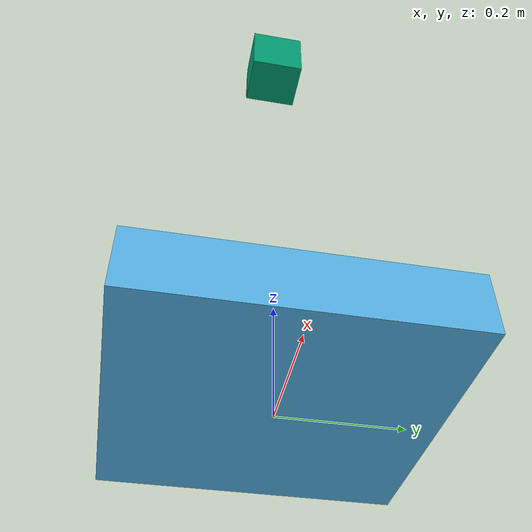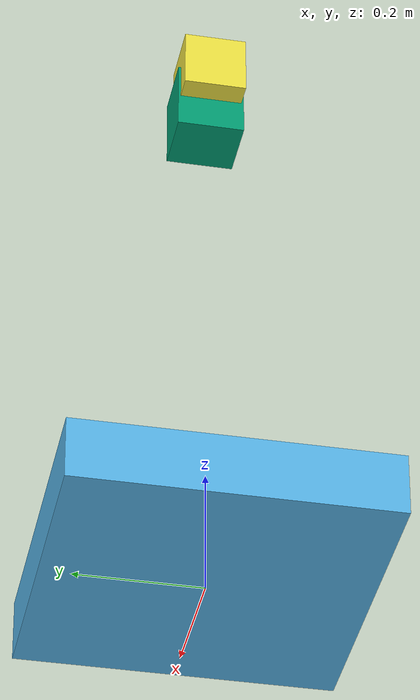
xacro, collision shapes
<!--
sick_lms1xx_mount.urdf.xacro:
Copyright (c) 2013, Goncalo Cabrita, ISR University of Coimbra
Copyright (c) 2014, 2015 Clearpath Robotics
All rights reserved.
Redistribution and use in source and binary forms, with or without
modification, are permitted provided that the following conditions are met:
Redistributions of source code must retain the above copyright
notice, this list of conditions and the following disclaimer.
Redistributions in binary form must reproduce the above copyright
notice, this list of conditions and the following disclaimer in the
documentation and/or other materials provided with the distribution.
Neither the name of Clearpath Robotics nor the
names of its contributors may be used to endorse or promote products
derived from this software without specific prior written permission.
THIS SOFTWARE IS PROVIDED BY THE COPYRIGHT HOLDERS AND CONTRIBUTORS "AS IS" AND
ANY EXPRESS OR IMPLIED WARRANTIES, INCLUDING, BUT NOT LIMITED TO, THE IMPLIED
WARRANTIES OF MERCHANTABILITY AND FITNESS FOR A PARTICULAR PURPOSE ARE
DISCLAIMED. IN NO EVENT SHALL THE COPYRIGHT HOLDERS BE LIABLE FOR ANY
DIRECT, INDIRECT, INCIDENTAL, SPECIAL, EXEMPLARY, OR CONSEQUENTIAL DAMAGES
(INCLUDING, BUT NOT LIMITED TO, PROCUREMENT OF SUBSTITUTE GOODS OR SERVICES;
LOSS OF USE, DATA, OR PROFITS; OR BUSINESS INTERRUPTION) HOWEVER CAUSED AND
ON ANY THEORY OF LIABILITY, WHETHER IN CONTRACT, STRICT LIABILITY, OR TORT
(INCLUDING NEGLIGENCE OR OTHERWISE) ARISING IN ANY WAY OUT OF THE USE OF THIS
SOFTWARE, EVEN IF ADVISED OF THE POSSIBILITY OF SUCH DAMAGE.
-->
<?xml version="1.0"?>
<robot xmlns:xacro="http://www.ros.org/wiki/xacro" name="example">

<xacro:property name="M_PI" value="3.14159"/>
<xacro:arg name="robot_namespace" default="/" />

  <!-- Base Footprint -->
  <link name="base_footprint" />

  <!-- Base Link-->
  <joint name="footprint" type="fixed" >
   <parent link="base_footprint" />
    <child link="base_link" />
    <origin xyz="0 0 0.05" rpy="0 0 0" />
  </joint>

  <link name="base_link" >
    <visual>
      <geometry>
        <box size="0.5 0.5 0.1" />
      </geometry>
    </visual>
    <collision>
      <geometry>
        <box size="0.5 0.5 0.1" />
      </geometry>
    </collision>
    <inertial>
      <origin xyz="0 0 0"/>
      <mass value="10"/>
      <inertia ixx="3.0" ixy="0.0" ixz="0.0"
               iyy="3.0" iyz="0.0"
               izz="3.0" />
    </inertial>
  </link>

      <joint name="sick_lms1xx_frame_joint" type="fixed">
      <parent link="base_link"/>
      <child link="base_laser_mount"/>
      <origin xyz="0 0 0.8" rpy="0 0 -3.14" />
      </joint>

  <!--sick_lms1xx camera -->
  <xacro:include filename="$(find gazebo_robot)/sensors/sick_lms1xx/urdf/sick_lms1xx_mount.urdf.xacro"/>
   <xacro:sick_lms1xx_mount prefix="base" />
   <sick_lms1xx frame="base_laser" topic="scan" robot_namespace="$(arg robot_namespace)"/>

</robot>

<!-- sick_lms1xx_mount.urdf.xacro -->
<robot xmlns:xacro="http://ros.org/wiki/xacro" name="sick_lms1xx_mount">

  <xacro:include filename="$(find lms1xx)/urdf/sick_lms1xx.urdf.xacro" />

  <xacro:macro name="sick_lms1xx_mount" params="prefix">

    <link name="${prefix}_laser_mount">
      <visual>
        <origin xyz="0 0 0" rpy="0 0 ${-M_PI/2}" />
        <geometry>
          <!-- Origin of this mesh is the base of the bracket. -->
          <mesh filename="package://gazebo_robot/sensors/sick_lms1xx/meshes/lms1xx_mount.dae" />
        </geometry>
      </visual>
      <collision>
        <origin xyz="0 0 .0585" rpy="0 0 0" />
        <geometry>
          <box size=".1 .108 .117" />
        </geometry>
      </collision>
    </link>

    <joint name="${prefix}_laser_joint" type="fixed">
      <!-- This offset is from the base of the bracket to the LIDAR's focal point. -->
      <origin xyz="0.0352 0 0.0566" rpy="${M_PI} 0 0" />
      <parent link="${prefix}_laser_mount" />
      <child link="${prefix}_laser" />
    </joint>

  </xacro:macro>

</robot>

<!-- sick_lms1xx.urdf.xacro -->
<robot xmlns:xacro="http://www.ros.org/wiki/xacro">

  <xacro:macro name="sick_lms1xx" params="frame:=laser topic:=scan sample_size:=720 update_rate:=5
               min_angle:=-2.35619 max_angle:=2.35619 min_range:=0.1 max_range:=30.0 robot_namespace:=/" >
    <link name="${frame}">
      <inertial>
        <mass value="1.1" />
        <origin xyz="0 0 0" />
        <inertia ixx="${0.0833333 * 1.1 * (0.102*0.102 + 0.152*0.152)}" ixy="0.0" ixz="0.0"
          iyy="${0.0833333 * 1.1 * (0.105*0.105 + 0.152*0.152)}" iyz="0.0"
          izz="${0.0833333 * 1.1 * (0.105*0.105 + 0.102*0.102)}" />
      </inertial>
      <visual>
        <origin xyz="0 0 0" rpy="0 0 0" />
        <geometry>
          <!-- Origin of this mesh is the focal point of the LIDAR. -->
          <mesh filename="file://$(find lms1xx)/meshes/sick-lms1xx.dae" />
        </geometry>
      </visual>
      <collision>
        <origin xyz="0 0 -0.05" rpy="0 0 0" />
        <geometry>
          <box size="0.105 0.1 0.1" />
        </geometry>
      </collision>
    </link>

    <gazebo reference="${frame}">
      <turnGravityOff>true</turnGravityOff>
      <sensor type="ray" name="${frame}">
        <pose>0 0 0 0 0 0</pose>
        <visualize>false</visualize>
        <update_rate>${update_rate}</update_rate>
        <ray>
          <scan>
            <horizontal>
              <samples>${sample_size}</samples>
              <resolution>1</resolution>
              <min_angle>${min_angle}</min_angle>
              <max_angle>${max_angle}</max_angle>
            </horizontal>
          </scan>
          <range>
            <min>${min_range}</min>
            <max>${max_range}</max>
            <resolution>0.01</resolution>
          </range>
          <noise>
            <type>gaussian</type>
            <mean>0.0</mean>
            <stddev>0.001</stddev>
          </noise>
        </ray>
        <plugin name="${frame}_scan" filename="libgazebo_ros_ray_sensor.so">
          <ros>
            <remapping>~/out:=${topic}</remapping>
            <qos>
              <topic name="${topic}">
                  <publisher>
                      <reliability>best_effort</reliability>
                  </publisher>
              </topic>
            </qos>
          </ros>
          <frame_name>${frame}</frame_name>
          <robot_namespace>${robot_namespace}</robot_namespace>
          <output_type>sensor_msgs/LaserScan</output_type>
        </plugin>
      </sensor>
    </gazebo>

  </xacro:macro>
</robot>
